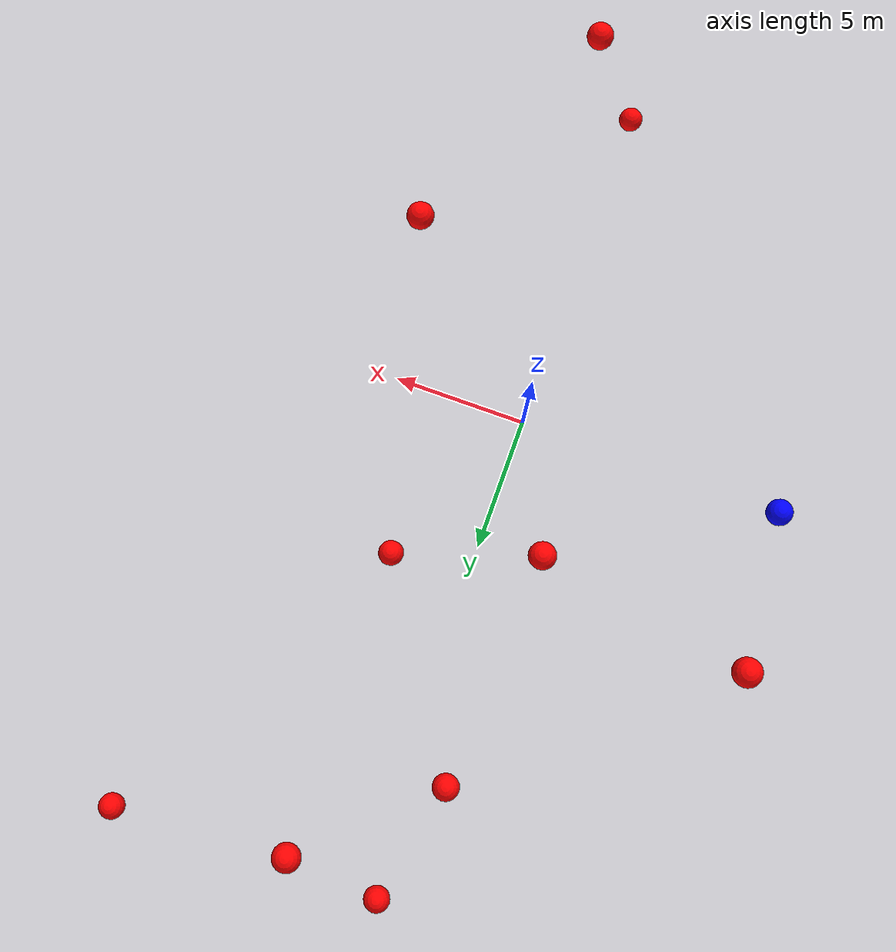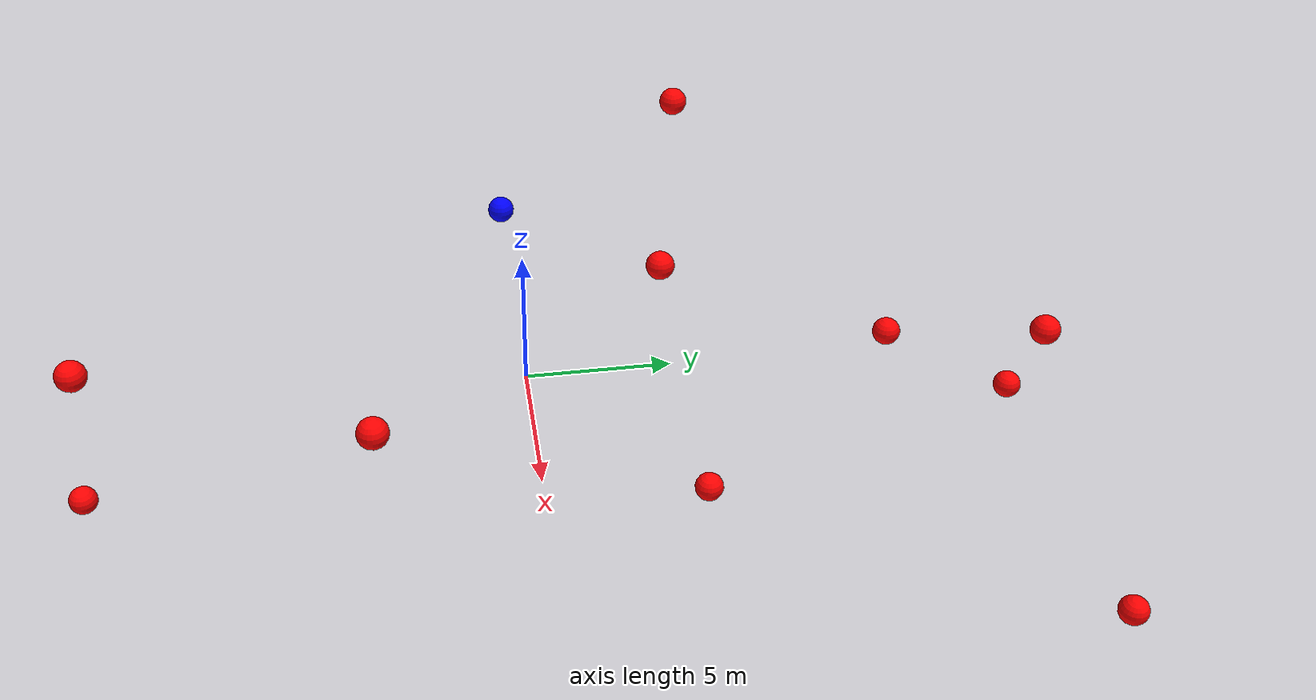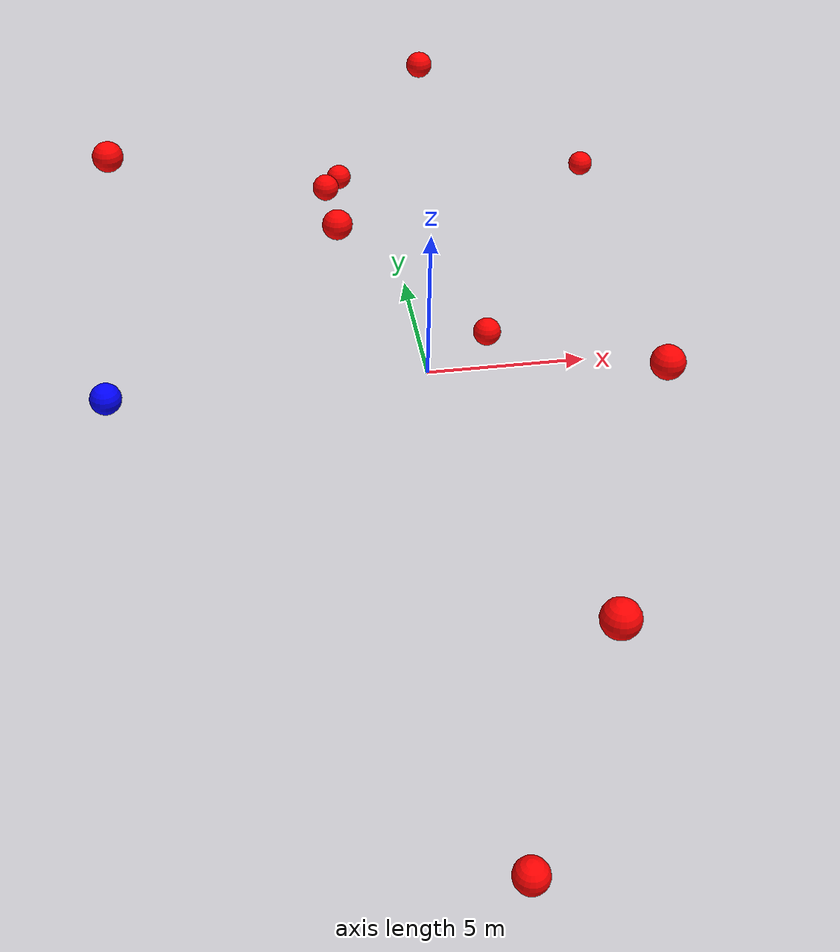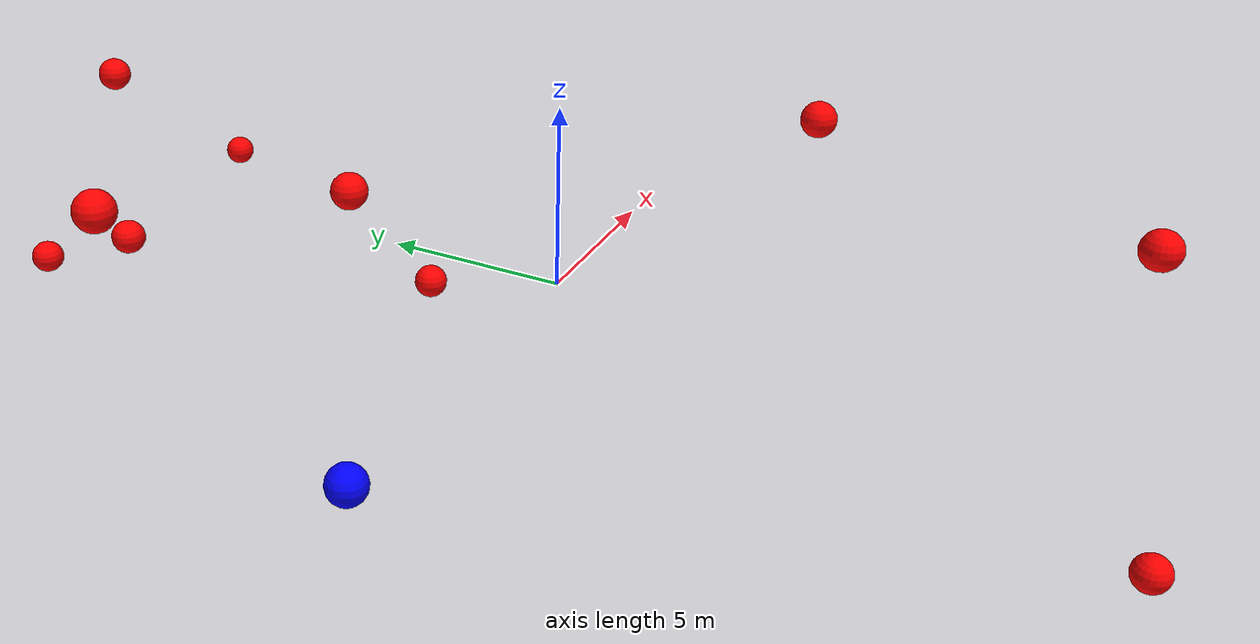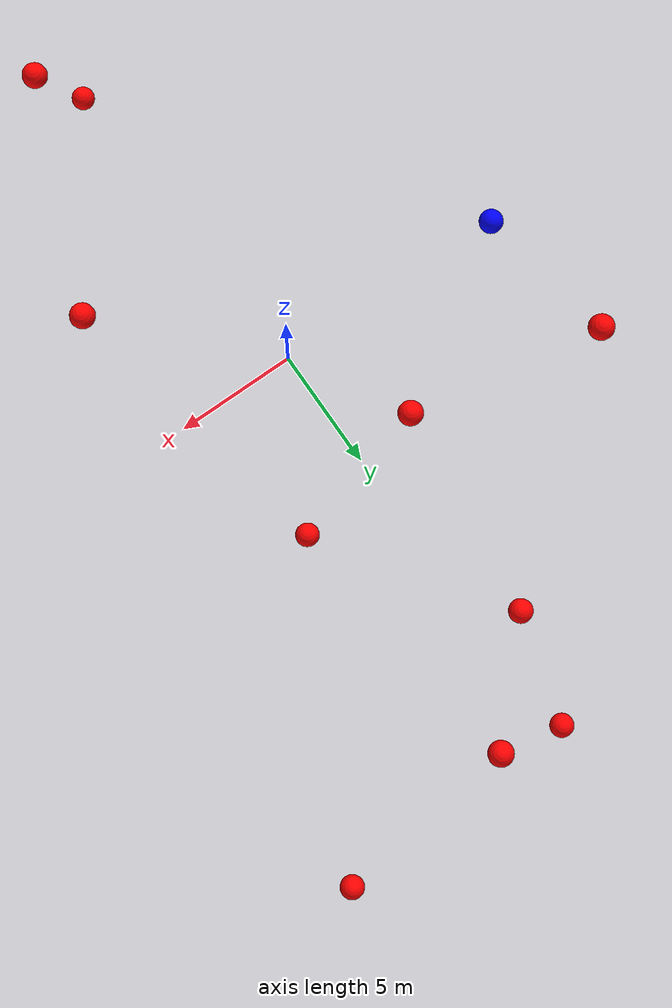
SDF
<?xml version="1.0" ?>
<sdf version="1.8">
    <world name="3d_world">
        <physics name="1ms" type="ode">
            <max_step_size>0.001</max_step_size>
            <real_time_factor>1.0</real_time_factor>
            <real_time_update_rate>1000.0</real_time_update_rate>
        </physics>
        <gravity>0 0 0</gravity>

        <plugin
            filename="gz-sim-physics-system"
            name="gz::sim::v8::systems::Physics">
        </plugin>
        <plugin
            filename="libignition-gazebo-user-commands-system.so"
            name="ignition::gazebo::systems::UserCommands">
        </plugin>
        <plugin
            filename="gz-sim-scene-broadcaster-system"
            name="gz::sim::systems::SceneBroadcaster">
        </plugin>
        <plugin
            filename="gz-sim-sensors-system"
            name="gz::sim::systems::Sensors">
            <render_engine>ogre2</render_engine>
        </plugin>

        <light type="directional" name="sun">
            <cast_shadows>true</cast_shadows>
            <pose>0 0 10 0 0 0</pose>
            <diffuse>0.8 0.8 0.8 1</diffuse>
            <specular>0.2 0.2 0.2 1</specular>
            <attenuation>
                <range>1000</range>
                <constant>0.9</constant>
                <linear>0.01</linear>
                <quadratic>0.001</quadratic>
            </attenuation>
            <direction>-0.5 0.1 -0.9</direction>
        </light>

        <!-- AGENTE -->
        <model name='agente' canonical_link='chassis'>
            <pose relative_to='world'>-10.0 0 0.0 0 0 0</pose>
            <link name='chassis'>
                <pose relative_to='__model__'>0.0 0 0.0 0 0 0</pose>
                <inertial>
                    <mass>1.14395</mass>
                    <inertia>
                        <ixx>0.095329</ixx>
                        <ixy>0</ixy>
                        <ixz>0</ixz>
                        <iyy>0.381317</iyy>
                        <iyz>0</iyz>
                        <izz>0.476646</izz>
                    </inertia>
                </inertial>
                <visual name='visual'>
                    <geometry>
                        <sphere>
                            <radius>0.5</radius>
                        </sphere>
                    </geometry>
                    <material>
                        <ambient>0.0 0.0 1.0 1</ambient>
                        <diffuse>0.0 0.0 1.0 1</diffuse>
                        <specular>0.0 0.0 1.0 1</specular>
                    </material>
                </visual>
                <collision name='collision'>
                    <geometry>
                        <sphere>
                            <radius>0.5</radius>
                        </sphere>
                    </geometry>
                </collision>
                <enable_gravity>false</enable_gravity>
            </link>

            <link name='lidar_link'>
                <pose relative_to='chassis'>0.0 0 0.1 0 0 0</pose>
                <inertial>
                    <mass>0.1</mass>
                    <inertia>
                        <ixx>0.000166667</ixx>
                        <iyy>0.000166667</iyy>
                        <izz>0.000166667</izz>
                    </inertia>
                </inertial>
                <collision name='collision'>
                    <geometry>
                        <cylinder>
                            <radius>0.05</radius>
                            <length>0.1</length>
                        </cylinder>
                    </geometry>
                </collision>
                <visual name='visual'>
                    <geometry>
                        <cylinder>
                            <radius>0.05</radius>
                            <length>0.1</length>
                        </cylinder>
                    </geometry>
                    <material>
                        <ambient>0.0 1.0 0.0 1</ambient>
                        <diffuse>0.0 1.0 0.0 1</diffuse>
                        <specular>0.0 1.0 0.0 1</specular>
                    </material>
                </visual>
                <sensor name="lidar" type="gpu_lidar">
                    <topic>scan</topic>
                    <update_rate>10</update_rate>
                    <lidar>
                        <scan>
                            <horizontal>
                                <samples>5000</samples>
                                <resolution>1</resolution>
                                <min_angle>-3.14159</min_angle>
                                <max_angle>3.14159</max_angle>
                            </horizontal>
                        </scan>
                        <range>
                            <min>0.1</min>
                            <max>10.0</max>
                            <resolution>0.01</resolution>
                        </range>
                    </lidar>
                    <visualize>true</visualize>
                    <always_on>true</always_on>
                    <update_rate>10</update_rate>
                    <pose_frame>lidar</pose_frame>
                </sensor>
                <enable_gravity>false</enable_gravity>
            </link>

            <joint name="lidar_joint" type="fixed">
                <parent>chassis</parent>
                <child>lidar_link</child>
            </joint>

            <plugin
                filename="ignition-gazebo-joint-state-publisher-system"
                name="ignition::gazebo::systems::JointStatePublisher">
            </plugin>
            <plugin
                filename="ignition-gazebo-odometry-publisher-system"
                name="ignition::gazebo::systems::OdometryPublisher">
                <dimensions>3</dimensions>
            </plugin>
            <plugin
                filename="ignition-gazebo-velocity-control-system"
                name="ignition::gazebo::systems::VelocityControl">
                <initial_linear>0.0 0 0</initial_linear>
                <initial_angular>0 0 0.0</initial_angular>
            </plugin>
            <plugin
                filename="libignition-gazebo-pose-publisher-system.so"
                name="ignition::gazebo::systems::PosePublisher">
                <topic>/agente/pose</topic>
                <frame_id>agente</frame_id>
                <update_rate>30</update_rate>
            </plugin>
        </model>

        <!-- OBSTACLE 1 -->
        <model name='obstacle_1' canonical_link='obstacle'>
            <static>false</static>
            <pose relative_to='world'>-0.81 18.07 -3.25 0 0 0</pose>
            <link name='obstacle'>
                <pose relative_to='__model__'>0.0 0 0.0 0 0 0</pose>
                <visual name='visual'>
                    <geometry>
                        <sphere>
                            <radius>0.50</radius>
                        </sphere>
                    </geometry>
                    <material>
                        <ambient>1.0 0.0 0.0 1</ambient>
                        <diffuse>1.0 0.0 0.0 1</diffuse>
                        <specular>1.0 0.0 0.0 1</specular>
                    </material>
                </visual>
                <collision name='collision'>
                    <geometry>
                        <sphere>
                            <radius>0.50</radius>
                        </sphere>
                    </geometry>
                </collision>
                <enable_gravity>false</enable_gravity>
            </link>

            <plugin
                filename="ignition-gazebo-velocity-control-system"
                name="ignition::gazebo::systems::VelocityControl">
                <initial_linear>0.08 -1.97 0.35</initial_linear>
                <initial_angular>0 0 0</initial_angular>
            </plugin>

            <plugin
                filename="ignition-gazebo-odometry-publisher-system"
                name="ignition::gazebo::systems::OdometryPublisher">
                <dimensions>3</dimensions>
            </plugin>
        </model>

        <!-- OBSTACLE 2 -->
        <model name='obstacle_2' canonical_link='obstacle'>
            <static>false</static>
            <pose relative_to='world'>0.14 -15.60 -3.79 0 0 0</pose>
            <link name='obstacle'>
                <pose relative_to='__model__'>0.0 0 0.0 0 0 0</pose>
                <visual name='visual'>
                    <geometry>
                        <sphere>
                            <radius>0.50</radius>
                        </sphere>
                    </geometry>
                    <material>
                        <ambient>1.0 0.0 0.0 1</ambient>
                        <diffuse>1.0 0.0 0.0 1</diffuse>
                        <specular>1.0 0.0 0.0 1</specular>
                    </material>
                </visual>
                <collision name='collision'>
                    <geometry>
                        <sphere>
                            <radius>0.50</radius>
                        </sphere>
                    </geometry>
                </collision>
                <enable_gravity>false</enable_gravity>
            </link>

            <plugin
                filename="ignition-gazebo-velocity-control-system"
                name="ignition::gazebo::systems::VelocityControl">
                <initial_linear>0.49 1.88 0.46</initial_linear>
                <initial_angular>0 0 0</initial_angular>
            </plugin>

            <plugin
                filename="ignition-gazebo-odometry-publisher-system"
                name="ignition::gazebo::systems::OdometryPublisher">
                <dimensions>3</dimensions>
            </plugin>
        </model>

        <!-- OBSTACLE 3 -->
        <model name='obstacle_3' canonical_link='obstacle'>
            <static>false</static>
            <pose relative_to='world'>3.18 5.90 -2.96 0 0 0</pose>
            <link name='obstacle'>
                <pose relative_to='__model__'>0.0 0 0.0 0 0 0</pose>
                <visual name='visual'>
                    <geometry>
                        <sphere>
                            <radius>0.50</radius>
                        </sphere>
                    </geometry>
                    <material>
                        <ambient>1.0 0.0 0.0 1</ambient>
                        <diffuse>1.0 0.0 0.0 1</diffuse>
                        <specular>1.0 0.0 0.0 1</specular>
                    </material>
                </visual>
                <collision name='collision'>
                    <geometry>
                        <sphere>
                            <radius>0.50</radius>
                        </sphere>
                    </geometry>
                </collision>
                <enable_gravity>false</enable_gravity>
            </link>

            <plugin
                filename="ignition-gazebo-velocity-control-system"
                name="ignition::gazebo::systems::VelocityControl">
                <initial_linear>-1.25 -1.39 0.70</initial_linear>
                <initial_angular>0 0 0</initial_angular>
            </plugin>

            <plugin
                filename="ignition-gazebo-odometry-publisher-system"
                name="ignition::gazebo::systems::OdometryPublisher">
                <dimensions>3</dimensions>
            </plugin>
        </model>

        <!-- OBSTACLE 4 -->
        <model name='obstacle_4' canonical_link='obstacle'>
            <static>false</static>
            <pose relative_to='world'>9.75 18.43 -3.59 0 0 0</pose>
            <link name='obstacle'>
                <pose relative_to='__model__'>0.0 0 0.0 0 0 0</pose>
                <visual name='visual'>
                    <geometry>
                        <sphere>
                            <radius>0.50</radius>
                        </sphere>
                    </geometry>
                    <material>
                        <ambient>1.0 0.0 0.0 1</ambient>
                        <diffuse>1.0 0.0 0.0 1</diffuse>
                        <specular>1.0 0.0 0.0 1</specular>
                    </material>
                </visual>
                <collision name='collision'>
                    <geometry>
                        <sphere>
                            <radius>0.50</radius>
                        </sphere>
                    </geometry>
                </collision>
                <enable_gravity>false</enable_gravity>
            </link>

            <plugin
                filename="ignition-gazebo-velocity-control-system"
                name="ignition::gazebo::systems::VelocityControl">
                <initial_linear>-0.38 -1.93 0.38</initial_linear>
                <initial_angular>0 0 0</initial_angular>
            </plugin>

            <plugin
                filename="ignition-gazebo-odometry-publisher-system"
                name="ignition::gazebo::systems::OdometryPublisher">
                <dimensions>3</dimensions>
            </plugin>
        </model>

        <!-- OBSTACLE 5 -->
        <model name='obstacle_5' canonical_link='obstacle'>
            <static>false</static>
            <pose relative_to='world'>-1.81 13.39 -0.97 0 0 0</pose>
            <link name='obstacle'>
                <pose relative_to='__model__'>0.0 0 0.0 0 0 0</pose>
                <visual name='visual'>
                    <geometry>
                        <sphere>
                            <radius>0.50</radius>
                        </sphere>
                    </geometry>
                    <material>
                        <ambient>1.0 0.0 0.0 1</ambient>
                        <diffuse>1.0 0.0 0.0 1</diffuse>
                        <specular>1.0 0.0 0.0 1</specular>
                    </material>
                </visual>
                <collision name='collision'>
                    <geometry>
                        <sphere>
                            <radius>0.50</radius>
                        </sphere>
                    </geometry>
                </collision>
                <enable_gravity>false</enable_gravity>
            </link>

            <plugin
                filename="ignition-gazebo-velocity-control-system"
                name="ignition::gazebo::systems::VelocityControl">
                <initial_linear>0.38 -1.96 0.14</initial_linear>
                <initial_angular>0 0 0</initial_angular>
            </plugin>

            <plugin
                filename="ignition-gazebo-odometry-publisher-system"
                name="ignition::gazebo::systems::OdometryPublisher">
                <dimensions>3</dimensions>
            </plugin>
        </model>

        <!-- OBSTACLE 6 -->
        <model name='obstacle_6' canonical_link='obstacle'>
            <static>false</static>
            <pose relative_to='world'>5.85 -5.00 3.56 0 0 0</pose>
            <link name='obstacle'>
                <pose relative_to='__model__'>0.0 0 0.0 0 0 0</pose>
                <visual name='visual'>
                    <geometry>
                        <sphere>
                            <radius>0.50</radius>
                        </sphere>
                    </geometry>
                    <material>
                        <ambient>1.0 0.0 0.0 1</ambient>
                        <diffuse>1.0 0.0 0.0 1</diffuse>
                        <specular>1.0 0.0 0.0 1</specular>
                    </material>
                </visual>
                <collision name='collision'>
                    <geometry>
                        <sphere>
                            <radius>0.50</radius>
                        </sphere>
                    </geometry>
                </collision>
                <enable_gravity>false</enable_gravity>
            </link>

            <plugin
                filename="ignition-gazebo-velocity-control-system"
                name="ignition::gazebo::systems::VelocityControl">
                <initial_linear>-0.55 0.96 -0.69</initial_linear>
                <initial_angular>0 0 0</initial_angular>
            </plugin>

            <plugin
                filename="ignition-gazebo-odometry-publisher-system"
                name="ignition::gazebo::systems::OdometryPublisher">
                <dimensions>3</dimensions>
            </plugin>
        </model>

        <!-- OBSTACLE 7 -->
        <model name='obstacle_7' canonical_link='obstacle'>
            <static>false</static>
            <pose relative_to='world'>2.06 -14.10 3.51 0 0 0</pose>
            <link name='obstacle'>
                <pose relative_to='__model__'>0.0 0 0.0 0 0 0</pose>
                <visual name='visual'>
                    <geometry>
                        <sphere>
                            <radius>0.50</radius>
                        </sphere>
                    </geometry>
                    <material>
                        <ambient>1.0 0.0 0.0 1</ambient>
                        <diffuse>1.0 0.0 0.0 1</diffuse>
                        <specular>1.0 0.0 0.0 1</specular>
                    </material>
                </visual>
                <collision name='collision'>
                    <geometry>
                        <sphere>
                            <radius>0.50</radius>
                        </sphere>
                    </geometry>
                </collision>
                <enable_gravity>false</enable_gravity>
            </link>

            <plugin
                filename="ignition-gazebo-velocity-control-system"
                name="ignition::gazebo::systems::VelocityControl">
                <initial_linear>-0.65 1.83 -0.46</initial_linear>
                <initial_angular>0 0 0</initial_angular>
            </plugin>

            <plugin
                filename="ignition-gazebo-odometry-publisher-system"
                name="ignition::gazebo::systems::OdometryPublisher">
                <dimensions>3</dimensions>
            </plugin>
        </model>

        <!-- OBSTACLE 8 -->
        <model name='obstacle_8' canonical_link='obstacle'>
            <static>false</static>
            <pose relative_to='world'>-9.48 6.63 4.70 0 0 0</pose>
            <link name='obstacle'>
                <pose relative_to='__model__'>0.0 0 0.0 0 0 0</pose>
                <visual name='visual'>
                    <geometry>
                        <sphere>
                            <radius>0.50</radius>
                        </sphere>
                    </geometry>
                    <material>
                        <ambient>1.0 0.0 0.0 1</ambient>
                        <diffuse>1.0 0.0 0.0 1</diffuse>
                        <specular>1.0 0.0 0.0 1</specular>
                    </material>
                </visual>
                <collision name='collision'>
                    <geometry>
                        <sphere>
                            <radius>0.50</radius>
                        </sphere>
                    </geometry>
                </collision>
                <enable_gravity>false</enable_gravity>
            </link>

            <plugin
                filename="ignition-gazebo-velocity-control-system"
                name="ignition::gazebo::systems::VelocityControl">
                <initial_linear>1.74 -0.80 -0.57</initial_linear>
                <initial_angular>0 0 0</initial_angular>
            </plugin>

            <plugin
                filename="ignition-gazebo-odometry-publisher-system"
                name="ignition::gazebo::systems::OdometryPublisher">
                <dimensions>3</dimensions>
            </plugin>
        </model>

        <!-- OBSTACLE 9 -->
        <model name='obstacle_9' canonical_link='obstacle'>
            <static>false</static>
            <pose relative_to='world'>-2.25 4.95 2.57 0 0 0</pose>
            <link name='obstacle'>
                <pose relative_to='__model__'>0.0 0 0.0 0 0 0</pose>
                <visual name='visual'>
                    <geometry>
                        <sphere>
                            <radius>0.50</radius>
                        </sphere>
                    </geometry>
                    <material>
                        <ambient>1.0 0.0 0.0 1</ambient>
                        <diffuse>1.0 0.0 0.0 1</diffuse>
                        <specular>1.0 0.0 0.0 1</specular>
                    </material>
                </visual>
                <collision name='collision'>
                    <geometry>
                        <sphere>
                            <radius>0.50</radius>
                        </sphere>
                    </geometry>
                </collision>
                <enable_gravity>false</enable_gravity>
            </link>

            <plugin
                filename="ignition-gazebo-velocity-control-system"
                name="ignition::gazebo::systems::VelocityControl">
                <initial_linear>-0.70 -1.66 -0.86</initial_linear>
                <initial_angular>0 0 0</initial_angular>
            </plugin>

            <plugin
                filename="ignition-gazebo-odometry-publisher-system"
                name="ignition::gazebo::systems::OdometryPublisher">
                <dimensions>3</dimensions>
            </plugin>
        </model>

        <!-- OBSTACLE 10 -->
        <model name='obstacle_10' canonical_link='obstacle'>
            <static>false</static>
            <pose relative_to='world'>2.38 17.14 2.14 0 0 0</pose>
            <link name='obstacle'>
                <pose relative_to='__model__'>0.0 0 0.0 0 0 0</pose>
                <visual name='visual'>
                    <geometry>
                        <sphere>
                            <radius>0.50</radius>
                        </sphere>
                    </geometry>
                    <material>
                        <ambient>1.0 0.0 0.0 1</ambient>
                        <diffuse>1.0 0.0 0.0 1</diffuse>
                        <specular>1.0 0.0 0.0 1</specular>
                    </material>
                </visual>
                <collision name='collision'>
                    <geometry>
                        <sphere>
                            <radius>0.50</radius>
                        </sphere>
                    </geometry>
                </collision>
                <enable_gravity>false</enable_gravity>
            </link>

            <plugin
                filename="ignition-gazebo-velocity-control-system"
                name="ignition::gazebo::systems::VelocityControl">
                <initial_linear>0.14 -1.98 -0.25</initial_linear>
                <initial_angular>0 0 0</initial_angular>
            </plugin>

            <plugin
                filename="ignition-gazebo-odometry-publisher-system"
                name="ignition::gazebo::systems::OdometryPublisher">
                <dimensions>3</dimensions>
            </plugin>
        </model>

    </world>
</sdf>
